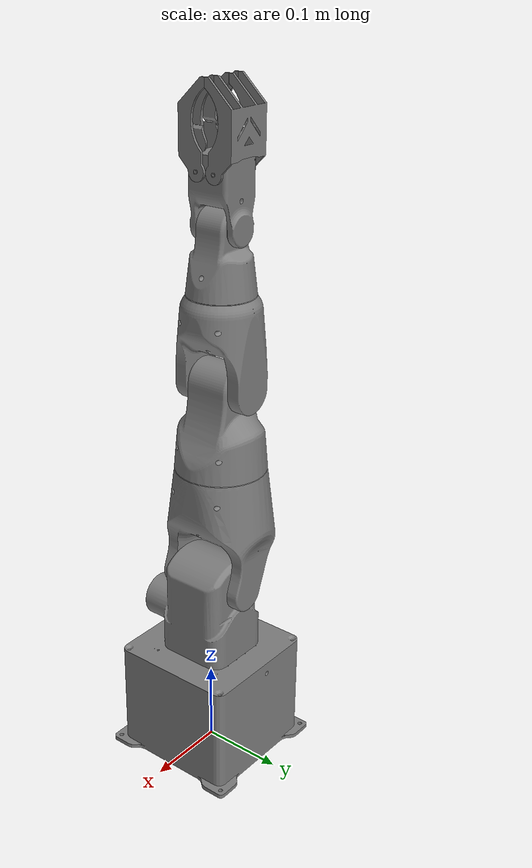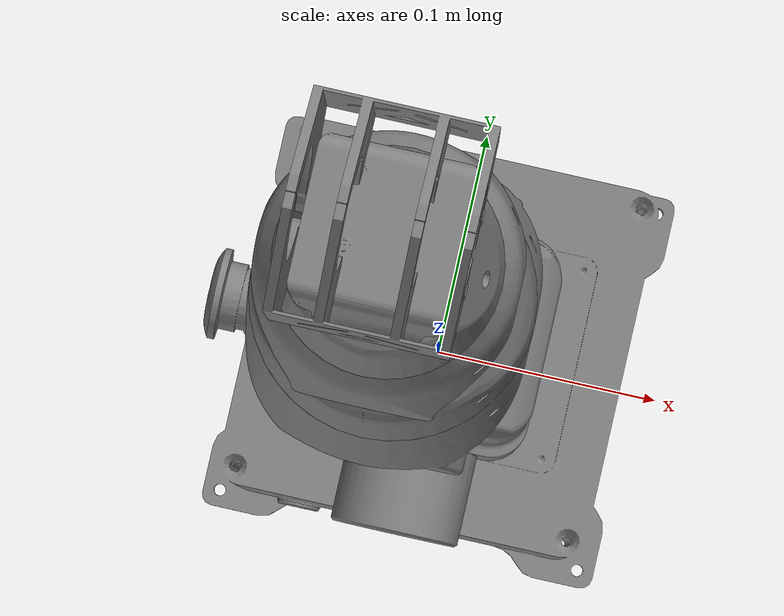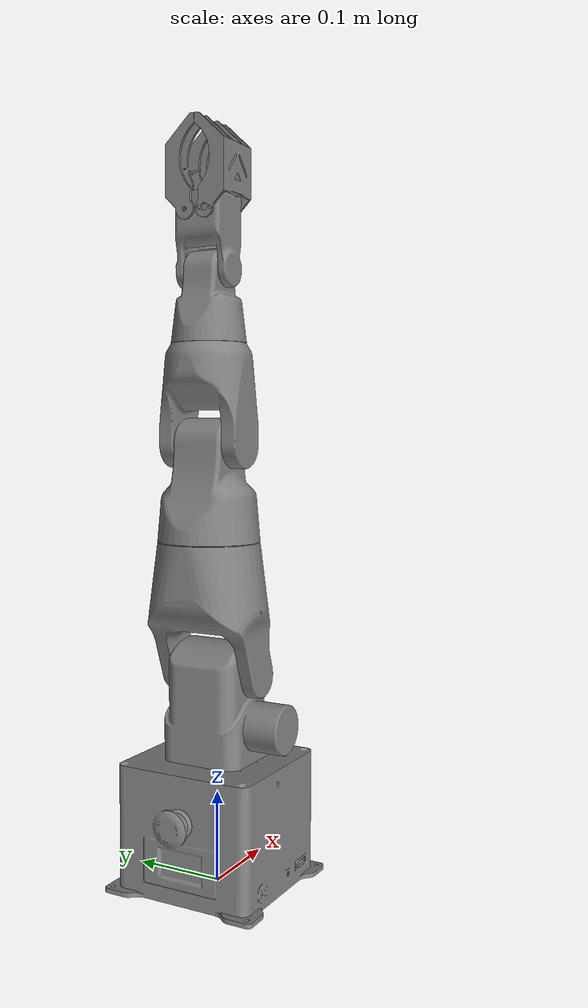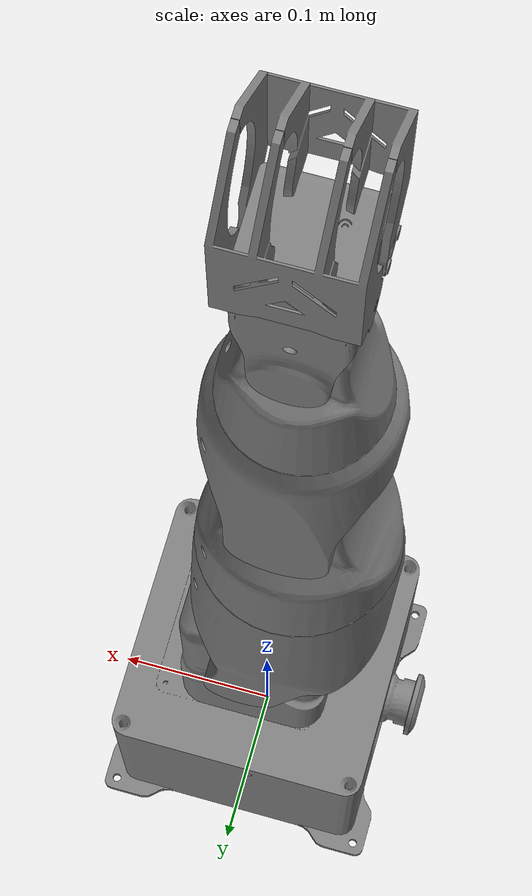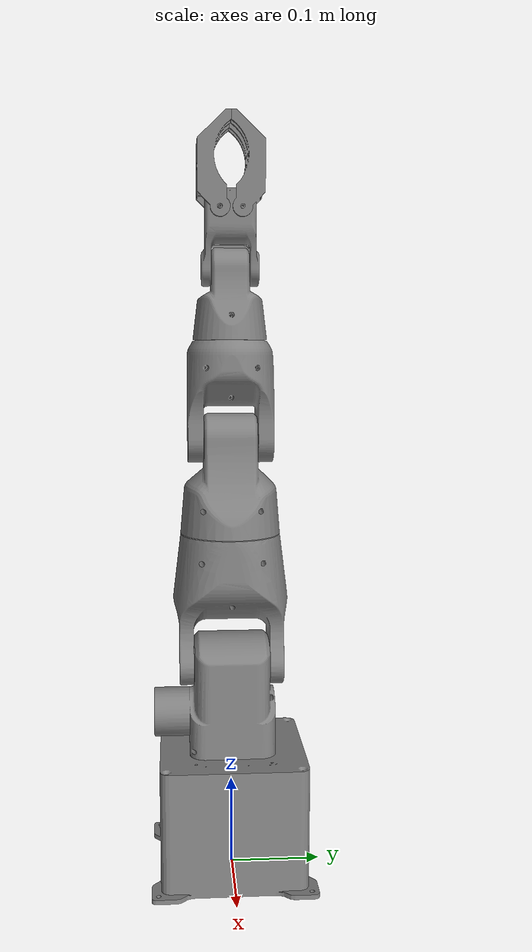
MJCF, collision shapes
<?xml version="1.0"?>
<mujoco model="xbot_arm_full">
  <!-- Compiler / meshdir -->
  <compiler angle="radian" meshdir="." />

  <!-- Assets: 使用你仓库中的实际 mesh 相对路径 -->
  <asset>
    <mesh name="base_link_mesh" file="../../meshes/xbot_arm/base_link.STL"/>
    <mesh name="arm_1_link_mesh" file="../../meshes/xbot_arm/arm_1_link.STL"/>
    <mesh name="arm_2_link_mesh" file="../../meshes/xbot_arm/arm_2_link.STL"/>
    <mesh name="arm_3_link_mesh" file="../../meshes/xbot_arm/arm_3_link.STL"/>
    <mesh name="arm_4_link_mesh" file="../../meshes/xbot_arm/arm_4_link.STL"/>
    <mesh name="arm_5_link_mesh" file="../../meshes/xbot_arm/arm_5_link.STL"/>
    <mesh name="arm_6_link_mesh" file="../../meshes/xbot_arm/arm_6_link.STL"/>
    <mesh name="gripper_1_link_mesh" file="../../meshes/xbot_arm/gripper_1_link.STL"/>
    <mesh name="gripper_2_link_mesh" file="../../meshes/xbot_arm/gripper_2_link.STL"/>
    <mesh name="gripper_centor_mesh" file="../../meshes/xbot_arm/gripper_centor_link.STL"/>
  </asset>

  <!-- Simulation options -->
  <option timestep="0.002" gravity="0 0 -9.81"/>

  <!-- Default geom/joint settings -->
  <default>
    <!-- URDF 中 gazebo mu1=mu2=0.9，映射到 MuJoCo friction 三元组 (slide, spin, roll) -->
    <geom friction="0.9 0.9 0.01" contype="1" conaffinity="1" solref="0.02 1" solimp="0.9 0.95 0.001"/>
    <joint damping="1.0"/>
  </default>

  <worldbody>
    <!-- base_link: 根 body -->
    <body name="base_link" pos="0 0 0">
      <inertial pos="-0.00594343164731706 -0.00101779633653512 0.070063016301284"
                mass="1.38676498234547"
                diaginertia="0.00442668602597922 0.00444008131004974 0.00774957715043441"/>
      <geom type="mesh" mesh="base_link_mesh" pos="0 0 0" euler="0 0 0"/>

      <!-- arm_1_link: origin xyz="0 0 0.14", rpy="3.1416 0 0" -> quat(0 1 0 0) -->
      <body name="arm_1_link" pos="0 0 0.14" quat="0 1 0 0">
        <inertial pos="-0.000117276290344319 0.0122228931530341 -0.0624701032538624"
                  mass="0.139955029249829"
                  diaginertia="0.000325457683704532 0.000236310540102376 0.000149250424678437"/>
        <geom type="mesh" mesh="arm_1_link_mesh" pos="0 0 0"/>

        <!-- hinge = revolute; axis 0 0 1; limits from URDF -->
        <joint name="arm_1_joint" type="hinge" pos="0 0 0" axis="0 0 1"
               range="-2.094 2.094" damping="1.0"/>

        <!-- arm_2_link: origin xyz="0 0 -0.095", rpy="-1.5708 0 0" -->
        <!-- rpy -> quat: (-1.5708,0,0) -> quat ~ (0.70710678, -0.70710678, 0, 0) -->
        <body name="arm_2_link" pos="0 0 -0.095" quat="0.70710678 -0.70710678 0 0">
          <inertial pos="-0.0174680236422027 0.0906428723777263 -3.29773055841057E-07"
                    mass="0.169587438537964"
                    diaginertia="0.000621052722745594 0.000313103181930873 0.000405564215148294"/>
          <geom type="mesh" mesh="arm_2_link_mesh" pos="0 0 0"/>
          <joint name="arm_2_joint" type="hinge" pos="0 0 0" axis="0 0 1"
                 range="-2.094 1.57079632679" damping="1.0"/>

          <!-- arm_3_link: origin xyz="-0.018 0.145 0", rpy="1.5708 0 0" -->
          <!-- quat ~ (0.70710678, 0.70710678, 0, 0) -->
          <body name="arm_3_link" pos="-0.018 0.145 0" quat="0.70710678 0.70710678 0 0">
            <inertial pos="-0.000485421157864062 6.83606345788855E-05 -0.0518192203685102"
                      mass="0.113439004135591"
                      diaginertia="0.000235493816702144 0.00016178376053715 0.000115808035506604"/>
            <geom type="mesh" mesh="arm_3_link_mesh" pos="0 0 0"/>
            <joint name="arm_3_joint" type="hinge" pos="0 0 0" axis="0 0 1"
                   range="-2.793 2.793" damping="1.0"/>

            <!-- arm_4_link: origin xyz="0 0 -0.105", rpy="-1.5708 0 0" -->
            <!-- quat ~ (0.70710678, -0.70710678, 0, 0) -->
            <body name="arm_4_link" pos="0 0 -0.105" quat="0.70710678 -0.70710678 0 0">
              <inertial pos="-0.000523676254705792 0.0548426547509552 -2.32870051976362E-06"
                        mass="0.0923387760232059"
                        diaginertia="0.000210731589973129 0.000113562778686391 0.000125255151693492"/>
              <geom type="mesh" mesh="arm_4_link_mesh" pos="0 0 0"/>
              <joint name="arm_4_joint" type="hinge" pos="0 0 0" axis="0 0 1"
                     range="-1.92 1.92" damping="1.0"/>

              <!-- arm_5_link: origin xyz="0 0.105 0", rpy="1.5708 0 0" -->
              <!-- quat ~ (0.70710678, 0.70710678, 0, 0) -->
              <body name="arm_5_link" pos="0 0.105 0" quat="0.70710678 0.70710678 0 0">
                <inertial pos="-0.000318440471593399 -4.33257243015121E-09 -0.0421503668391696"
                          mass="0.0467464068633803"
                          diaginertia="5.04548630748624E-05 3.77221825095438E-05 2.16144252369209E-05"/>
                <geom type="mesh" mesh="arm_5_link_mesh" pos="0 0 0"/>
                <joint name="arm_5_joint" type="hinge" pos="0 0 0" axis="0 0 1"
                       range="-2.793 2.793" damping="1.0"/>

                <!-- arm_6_link: origin xyz="0 -0.0002 -0.075", rpy="-1.5708 0 0" -->
                <!-- quat ~ (0.70710678, -0.70710678, 0, 0) -->
                <body name="arm_6_link" pos="0 -0.0002 -0.075" quat="0.70710678 -0.70710678 0 0">
                  <inertial pos="0.00023077781229322 0.0477776544969339 -0.000274578550932736"
                            mass="0.0663534128705839"
                            diaginertia="4.46094691893757E-05 3.14288652751225E-05 5.02053835003699E-05"/>
                  <geom type="mesh" mesh="arm_6_link_mesh" pos="0 0 0"/>
                  <joint name="arm_6_joint" type="hinge" pos="0 0 0" axis="0 0 1"
                         range="-1.57 1.57" damping="1.0"/>

                  <!-- gripper_1_link: origin rpy="1.5708 0 1.5708", xyz="-0.0001 0.06175 0.0115" -->
                  <!-- quat computed ~ (0.5, 0.5, 0.50000184, 0.5) -->
                  <body name="gripper_1_link" pos="-0.0001 0.06175 0.0115" quat="0.49999816 0.5 0.50000184 0.5">
                    <inertial pos="0.0428524050252714 0.0102173668833365 1.53174098056555E-05"
                              mass="0.0229460702572688"
                              diaginertia="1.29555143093886E-05 2.6397024313168E-05 1.7220072843041E-05"/>
                    <geom type="mesh" mesh="gripper_1_link_mesh" pos="0 0 0"/>
                    <joint name="gripper_1_joint" type="hinge" pos="0 0 0" axis="0 0 1"
                           range="0 0.698" damping="1.0"/>
                  </body>

                  <!-- gripper_2_link: origin rpy="-1.5708 0 1.5708", xyz="-0.0001 0.06175 -0.012" -->
                  <!-- quat computed ~ (0.49999816, -0.5, -0.50000184, 0.5) -->
                  <body name="gripper_2_link" pos="-0.0001 0.06175 -0.012" quat="0.49999816 -0.5 -0.50000184 0.5">
                    <inertial pos="0.0428304976382079 0.0102055784464402 9.00813000661443E-07"
                              mass="0.0229585233092397"
                              diaginertia="1.30784892266813E-05 2.67601282938736E-05 1.74955869845825E-05"/>
                    <geom type="mesh" mesh="gripper_2_link_mesh" pos="0 0 0"/>
                    <joint name="gripper_2_joint" type="hinge" pos="0 0 0" axis="0 0 1"
                           range="0 0.698" damping="1.0"/>
                  </body>

                  <!-- gripper center fixed link -->
                  <!-- origin rpy="-1.5708 0 1.5708", xyz="-0.000 0.125 0" -->
                  <body name="gripper_centor_link" pos="-0.000 0.125 0" quat="0.49999816 -0.5 -0.50000184 0.5">
                    <geom type="mesh" mesh="gripper_centor_mesh" pos="0 0 0" contype="0" conaffinity="0"/>
                  </body>

                </body> <!-- end arm_6_link -->
              </body> <!-- end arm_5_link -->
            </body> <!-- end arm_4_link -->
          </body> <!-- end arm_3_link -->
        </body> <!-- end arm_2_link -->
      </body> <!-- end arm_1_link -->
    </body> <!-- end base_link -->
  </worldbody>

  <!-- Actuators: 将 URDF 的 PositionJointInterface -> MuJoCo position actuators -->
  <actuator>
    <!-- arm actuators -->
    <position joint="arm_1_joint" kp="100" gear="1"/>
    <position joint="arm_2_joint" kp="100" gear="1"/>
    <position joint="arm_3_joint" kp="100" gear="1"/>
    <position joint="arm_4_joint" kp="100" gear="1"/>
    <position joint="arm_5_joint" kp="100" gear="1"/>
    <position joint="arm_6_joint" kp="100" gear="1"/>

    <!-- grippers: 推荐仅驱动 gripper_1，并在控制端同步 gripper_2 (mimic multiplier=1) -->
    <position joint="gripper_1_joint" kp="200" gear="1"/>
    <!-- 如果你想在 MJCF 内部同时驱动 gripper_2，也可启用下面 actuator -->
    <position joint="gripper_2_joint" kp="200" gear="1"/>
  </actuator>

</mujoco>
